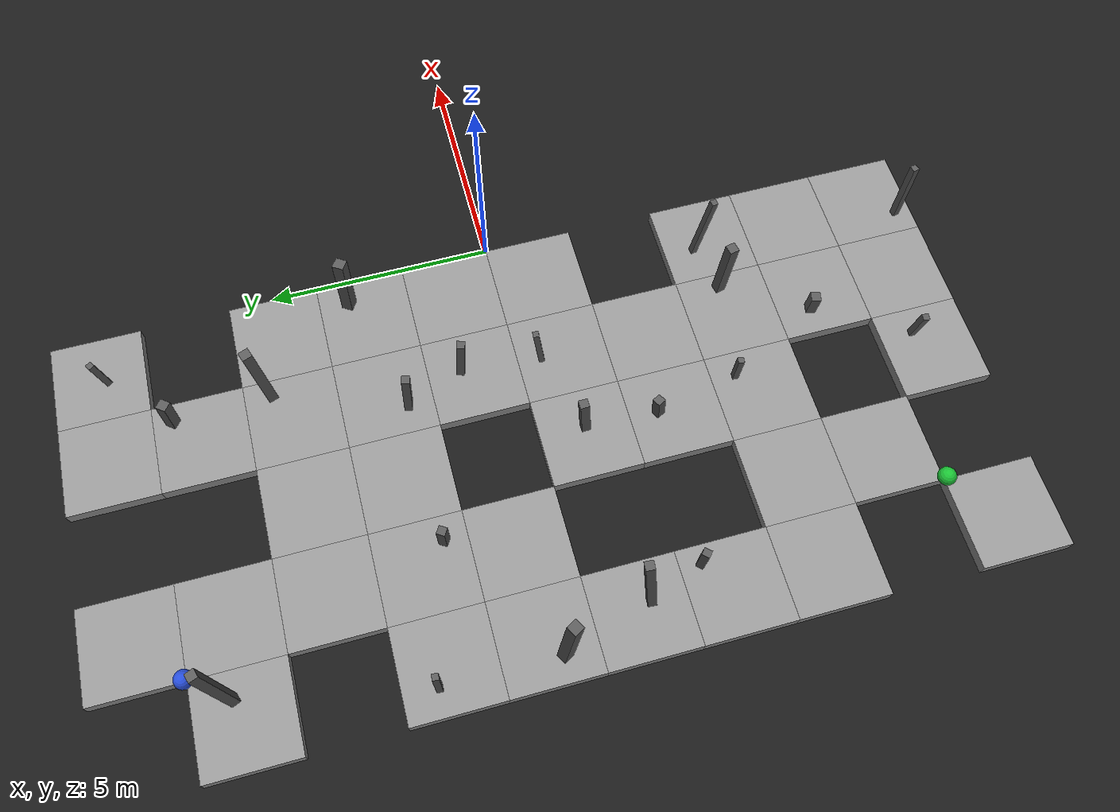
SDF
<sdf version="1.6">
 <world name="obstacle_course">
  <model name="pit_floor">
   <static>true</static>
   <link name="link">
    <pose>0 0 -2.0 0 0 0</pose>
    <collision name="col">
     <geometry><plane><normal>0 0 1</normal><size>100 100</size></plane></geometry>
     <surface><friction><ode><mu>0.5</mu><mu2>0.5</mu2></ode></friction></surface>
    </collision>
    <visual name="vis">
     <cast_shadows>false</cast_shadows>
     <geometry><plane><normal>0 0 1</normal><size>100 100</size></plane></geometry>
     <material>
      <ambient>0.06 0.06 0.06 1</ambient>
      <diffuse>0.10 0.10 0.10 1</diffuse>
      <specular>0 0 0 1</specular>
     </material>
    </visual>
   </link>
  </model>
  <model name="obstacle_terrain">
   <static>true</static>
   <link name="tile_0_0">
    <pose>-9.000 -9.000 -0.150 0 0 0</pose>
    <collision name="col">
     <geometry><box><size>2.00 2.00 0.30</size></box></geometry>
     <surface><friction><ode><mu>1.0</mu><mu2>1.0</mu2></ode></friction></surface>
    </collision>
    <visual name="vis">
     <geometry><box><size>2.00 2.00 0.30</size></box></geometry>
     <material>
      <ambient>0.58 0.58 0.58 1</ambient>
      <diffuse>0.58 0.58 0.58 1</diffuse>
      <specular>0 0 0 1</specular>
     </material>
    </visual>
   </link>
   <link name="tile_0_2">
    <pose>-9.000 -5.000 -0.150 0 0 0</pose>
    <collision name="col">
     <geometry><box><size>2.00 2.00 0.30</size></box></geometry>
     <surface><friction><ode><mu>1.0</mu><mu2>1.0</mu2></ode></friction></surface>
    </collision>
    <visual name="vis">
     <geometry><box><size>2.00 2.00 0.30</size></box></geometry>
     <material>
      <ambient>0.58 0.58 0.58 1</ambient>
      <diffuse>0.58 0.58 0.58 1</diffuse>
      <specular>0 0 0 1</specular>
     </material>
    </visual>
   </link>
   <link name="tile_0_3">
    <pose>-9.000 -3.000 -0.150 0 0 0</pose>
    <collision name="col">
     <geometry><box><size>2.00 2.00 0.30</size></box></geometry>
     <surface><friction><ode><mu>1.0</mu><mu2>1.0</mu2></ode></friction></surface>
    </collision>
    <visual name="vis">
     <geometry><box><size>2.00 2.00 0.30</size></box></geometry>
     <material>
      <ambient>0.58 0.58 0.58 1</ambient>
      <diffuse>0.58 0.58 0.58 1</diffuse>
      <specular>0 0 0 1</specular>
     </material>
    </visual>
   </link>
   <link name="tile_0_4">
    <pose>-9.000 -1.000 -0.150 0 0 0</pose>
    <collision name="col">
     <geometry><box><size>2.00 2.00 0.30</size></box></geometry>
     <surface><friction><ode><mu>1.0</mu><mu2>1.0</mu2></ode></friction></surface>
    </collision>
    <visual name="vis">
     <geometry><box><size>2.00 2.00 0.30</size></box></geometry>
     <material>
      <ambient>0.58 0.58 0.58 1</ambient>
      <diffuse>0.58 0.58 0.58 1</diffuse>
      <specular>0 0 0 1</specular>
     </material>
    </visual>
   </link>
   <link name="tile_0_5">
    <pose>-9.000 1.000 -0.150 0 0 0</pose>
    <collision name="col">
     <geometry><box><size>2.00 2.00 0.30</size></box></geometry>
     <surface><friction><ode><mu>1.0</mu><mu2>1.0</mu2></ode></friction></surface>
    </collision>
    <visual name="vis">
     <geometry><box><size>2.00 2.00 0.30</size></box></geometry>
     <material>
      <ambient>0.58 0.58 0.58 1</ambient>
      <diffuse>0.58 0.58 0.58 1</diffuse>
      <specular>0 0 0 1</specular>
     </material>
    </visual>
   </link>
   <link name="tile_0_6">
    <pose>-9.000 3.000 -0.150 0 0 0</pose>
    <collision name="col">
     <geometry><box><size>2.00 2.00 0.30</size></box></geometry>
     <surface><friction><ode><mu>1.0</mu><mu2>1.0</mu2></ode></friction></surface>
    </collision>
    <visual name="vis">
     <geometry><box><size>2.00 2.00 0.30</size></box></geometry>
     <material>
      <ambient>0.58 0.58 0.58 1</ambient>
      <diffuse>0.58 0.58 0.58 1</diffuse>
      <specular>0 0 0 1</specular>
     </material>
    </visual>
   </link>
   <link name="tile_0_8">
    <pose>-9.000 7.000 -0.150 0 0 0</pose>
    <collision name="col">
     <geometry><box><size>2.00 2.00 0.30</size></box></geometry>
     <surface><friction><ode><mu>1.0</mu><mu2>1.0</mu2></ode></friction></surface>
    </collision>
    <visual name="vis">
     <geometry><box><size>2.00 2.00 0.30</size></box></geometry>
     <material>
      <ambient>0.58 0.58 0.58 1</ambient>
      <diffuse>0.58 0.58 0.58 1</diffuse>
      <specular>0 0 0 1</specular>
     </material>
    </visual>
   </link>
   <link name="tile_1_1">
    <pose>-7.000 -7.000 -0.150 0 0 0</pose>
    <collision name="col">
     <geometry><box><size>2.00 2.00 0.30</size></box></geometry>
     <surface><friction><ode><mu>1.0</mu><mu2>1.0</mu2></ode></friction></surface>
    </collision>
    <visual name="vis">
     <geometry><box><size>2.00 2.00 0.30</size></box></geometry>
     <material>
      <ambient>0.58 0.58 0.58 1</ambient>
      <diffuse>0.58 0.58 0.58 1</diffuse>
      <specular>0 0 0 1</specular>
     </material>
    </visual>
   </link>
   <link name="tile_1_2">
    <pose>-7.000 -5.000 -0.150 0 0 0</pose>
    <collision name="col">
     <geometry><box><size>2.00 2.00 0.30</size></box></geometry>
     <surface><friction><ode><mu>1.0</mu><mu2>1.0</mu2></ode></friction></surface>
    </collision>
    <visual name="vis">
     <geometry><box><size>2.00 2.00 0.30</size></box></geometry>
     <material>
      <ambient>0.58 0.58 0.58 1</ambient>
      <diffuse>0.58 0.58 0.58 1</diffuse>
      <specular>0 0 0 1</specular>
     </material>
    </visual>
   </link>
   <link name="tile_1_5">
    <pose>-7.000 1.000 -0.150 0 0 0</pose>
    <collision name="col">
     <geometry><box><size>2.00 2.00 0.30</size></box></geometry>
     <surface><friction><ode><mu>1.0</mu><mu2>1.0</mu2></ode></friction></surface>
    </collision>
    <visual name="vis">
     <geometry><box><size>2.00 2.00 0.30</size></box></geometry>
     <material>
      <ambient>0.58 0.58 0.58 1</ambient>
      <diffuse>0.58 0.58 0.58 1</diffuse>
      <specular>0 0 0 1</specular>
     </material>
    </visual>
   </link>
   <link name="tile_1_6">
    <pose>-7.000 3.000 -0.150 0 0 0</pose>
    <collision name="col">
     <geometry><box><size>2.00 2.00 0.30</size></box></geometry>
     <surface><friction><ode><mu>1.0</mu><mu2>1.0</mu2></ode></friction></surface>
    </collision>
    <visual name="vis">
     <geometry><box><size>2.00 2.00 0.30</size></box></geometry>
     <material>
      <ambient>0.58 0.58 0.58 1</ambient>
      <diffuse>0.58 0.58 0.58 1</diffuse>
      <specular>0 0 0 1</specular>
     </material>
    </visual>
   </link>
   <link name="tile_1_7">
    <pose>-7.000 5.000 -0.150 0 0 0</pose>
    <collision name="col">
     <geometry><box><size>2.00 2.00 0.30</size></box></geometry>
     <surface><friction><ode><mu>1.0</mu><mu2>1.0</mu2></ode></friction></surface>
    </collision>
    <visual name="vis">
     <geometry><box><size>2.00 2.00 0.30</size></box></geometry>
     <material>
      <ambient>0.58 0.58 0.58 1</ambient>
      <diffuse>0.58 0.58 0.58 1</diffuse>
      <specular>0 0 0 1</specular>
     </material>
    </visual>
   </link>
   <link name="tile_1_8">
    <pose>-7.000 7.000 -0.150 0 0 0</pose>
    <collision name="col">
     <geometry><box><size>2.00 2.00 0.30</size></box></geometry>
     <surface><friction><ode><mu>1.0</mu><mu2>1.0</mu2></ode></friction></surface>
    </collision>
    <visual name="vis">
     <geometry><box><size>2.00 2.00 0.30</size></box></geometry>
     <material>
      <ambient>0.58 0.58 0.58 1</ambient>
      <diffuse>0.58 0.58 0.58 1</diffuse>
      <specular>0 0 0 1</specular>
     </material>
    </visual>
   </link>
   <link name="tile_1_9">
    <pose>-7.000 9.000 -0.150 0 0 0</pose>
    <collision name="col">
     <geometry><box><size>2.00 2.00 0.30</size></box></geometry>
     <surface><friction><ode><mu>1.0</mu><mu2>1.0</mu2></ode></friction></surface>
    </collision>
    <visual name="vis">
     <geometry><box><size>2.00 2.00 0.30</size></box></geometry>
     <material>
      <ambient>0.58 0.58 0.58 1</ambient>
      <diffuse>0.58 0.58 0.58 1</diffuse>
      <specular>0 0 0 1</specular>
     </material>
    </visual>
   </link>
   <link name="tile_2_0">
    <pose>-5.000 -9.000 -0.150 0 0 0</pose>
    <collision name="col">
     <geometry><box><size>2.00 2.00 0.30</size></box></geometry>
     <surface><friction><ode><mu>1.0</mu><mu2>1.0</mu2></ode></friction></surface>
    </collision>
    <visual name="vis">
     <geometry><box><size>2.00 2.00 0.30</size></box></geometry>
     <material>
      <ambient>0.58 0.58 0.58 1</ambient>
      <diffuse>0.58 0.58 0.58 1</diffuse>
      <specular>0 0 0 1</specular>
     </material>
    </visual>
   </link>
   <link name="tile_2_2">
    <pose>-5.000 -5.000 -0.150 0 0 0</pose>
    <collision name="col">
     <geometry><box><size>2.00 2.00 0.30</size></box></geometry>
     <surface><friction><ode><mu>1.0</mu><mu2>1.0</mu2></ode></friction></surface>
    </collision>
    <visual name="vis">
     <geometry><box><size>2.00 2.00 0.30</size></box></geometry>
     <material>
      <ambient>0.58 0.58 0.58 1</ambient>
      <diffuse>0.58 0.58 0.58 1</diffuse>
      <specular>0 0 0 1</specular>
     </material>
    </visual>
   </link>
   <link name="tile_2_3">
    <pose>-5.000 -3.000 -0.150 0 0 0</pose>
    <collision name="col">
     <geometry><box><size>2.00 2.00 0.30</size></box></geometry>
     <surface><friction><ode><mu>1.0</mu><mu2>1.0</mu2></ode></friction></surface>
    </collision>
    <visual name="vis">
     <geometry><box><size>2.00 2.00 0.30</size></box></geometry>
     <material>
      <ambient>0.58 0.58 0.58 1</ambient>
      <diffuse>0.58 0.58 0.58 1</diffuse>
      <specular>0 0 0 1</specular>
     </material>
    </visual>
   </link>
   <link name="tile_2_4">
    <pose>-5.000 -1.000 -0.150 0 0 0</pose>
    <collision name="col">
     <geometry><box><size>2.00 2.00 0.30</size></box></geometry>
     <surface><friction><ode><mu>1.0</mu><mu2>1.0</mu2></ode></friction></surface>
    </collision>
    <visual name="vis">
     <geometry><box><size>2.00 2.00 0.30</size></box></geometry>
     <material>
      <ambient>0.58 0.58 0.58 1</ambient>
      <diffuse>0.58 0.58 0.58 1</diffuse>
      <specular>0 0 0 1</specular>
     </material>
    </visual>
   </link>
   <link name="tile_2_6">
    <pose>-5.000 3.000 -0.150 0 0 0</pose>
    <collision name="col">
     <geometry><box><size>2.00 2.00 0.30</size></box></geometry>
     <surface><friction><ode><mu>1.0</mu><mu2>1.0</mu2></ode></friction></surface>
    </collision>
    <visual name="vis">
     <geometry><box><size>2.00 2.00 0.30</size></box></geometry>
     <material>
      <ambient>0.58 0.58 0.58 1</ambient>
      <diffuse>0.58 0.58 0.58 1</diffuse>
      <specular>0 0 0 1</specular>
     </material>
    </visual>
   </link>
   <link name="tile_2_7">
    <pose>-5.000 5.000 -0.150 0 0 0</pose>
    <collision name="col">
     <geometry><box><size>2.00 2.00 0.30</size></box></geometry>
     <surface><friction><ode><mu>1.0</mu><mu2>1.0</mu2></ode></friction></surface>
    </collision>
    <visual name="vis">
     <geometry><box><size>2.00 2.00 0.30</size></box></geometry>
     <material>
      <ambient>0.58 0.58 0.58 1</ambient>
      <diffuse>0.58 0.58 0.58 1</diffuse>
      <specular>0 0 0 1</specular>
     </material>
    </visual>
   </link>
   <link name="tile_3_0">
    <pose>-3.000 -9.000 -0.150 0 0 0</pose>
    <collision name="col">
     <geometry><box><size>2.00 2.00 0.30</size></box></geometry>
     <surface><friction><ode><mu>1.0</mu><mu2>1.0</mu2></ode></friction></surface>
    </collision>
    <visual name="vis">
     <geometry><box><size>2.00 2.00 0.30</size></box></geometry>
     <material>
      <ambient>0.58 0.58 0.58 1</ambient>
      <diffuse>0.58 0.58 0.58 1</diffuse>
      <specular>0 0 0 1</specular>
     </material>
    </visual>
   </link>
   <link name="tile_3_1">
    <pose>-3.000 -7.000 -0.150 0 0 0</pose>
    <collision name="col">
     <geometry><box><size>2.00 2.00 0.30</size></box></geometry>
     <surface><friction><ode><mu>1.0</mu><mu2>1.0</mu2></ode></friction></surface>
    </collision>
    <visual name="vis">
     <geometry><box><size>2.00 2.00 0.30</size></box></geometry>
     <material>
      <ambient>0.58 0.58 0.58 1</ambient>
      <diffuse>0.58 0.58 0.58 1</diffuse>
      <specular>0 0 0 1</specular>
     </material>
    </visual>
   </link>
   <link name="tile_3_2">
    <pose>-3.000 -5.000 -0.150 0 0 0</pose>
    <collision name="col">
     <geometry><box><size>2.00 2.00 0.30</size></box></geometry>
     <surface><friction><ode><mu>1.0</mu><mu2>1.0</mu2></ode></friction></surface>
    </collision>
    <visual name="vis">
     <geometry><box><size>2.00 2.00 0.30</size></box></geometry>
     <material>
      <ambient>0.58 0.58 0.58 1</ambient>
      <diffuse>0.58 0.58 0.58 1</diffuse>
      <specular>0 0 0 1</specular>
     </material>
    </visual>
   </link>
   <link name="tile_3_3">
    <pose>-3.000 -3.000 -0.150 0 0 0</pose>
    <collision name="col">
     <geometry><box><size>2.00 2.00 0.30</size></box></geometry>
     <surface><friction><ode><mu>1.0</mu><mu2>1.0</mu2></ode></friction></surface>
    </collision>
    <visual name="vis">
     <geometry><box><size>2.00 2.00 0.30</size></box></geometry>
     <material>
      <ambient>0.58 0.58 0.58 1</ambient>
      <diffuse>0.58 0.58 0.58 1</diffuse>
      <specular>0 0 0 1</specular>
     </material>
    </visual>
   </link>
   <link name="tile_3_4">
    <pose>-3.000 -1.000 -0.150 0 0 0</pose>
    <collision name="col">
     <geometry><box><size>2.00 2.00 0.30</size></box></geometry>
     <surface><friction><ode><mu>1.0</mu><mu2>1.0</mu2></ode></friction></surface>
    </collision>
    <visual name="vis">
     <geometry><box><size>2.00 2.00 0.30</size></box></geometry>
     <material>
      <ambient>0.58 0.58 0.58 1</ambient>
      <diffuse>0.58 0.58 0.58 1</diffuse>
      <specular>0 0 0 1</specular>
     </material>
    </visual>
   </link>
   <link name="tile_3_5">
    <pose>-3.000 1.000 -0.150 0 0 0</pose>
    <collision name="col">
     <geometry><box><size>2.00 2.00 0.30</size></box></geometry>
     <surface><friction><ode><mu>1.0</mu><mu2>1.0</mu2></ode></friction></surface>
    </collision>
    <visual name="vis">
     <geometry><box><size>2.00 2.00 0.30</size></box></geometry>
     <material>
      <ambient>0.58 0.58 0.58 1</ambient>
      <diffuse>0.58 0.58 0.58 1</diffuse>
      <specular>0 0 0 1</specular>
     </material>
    </visual>
   </link>
   <link name="tile_3_6">
    <pose>-3.000 3.000 -0.150 0 0 0</pose>
    <collision name="col">
     <geometry><box><size>2.00 2.00 0.30</size></box></geometry>
     <surface><friction><ode><mu>1.0</mu><mu2>1.0</mu2></ode></friction></surface>
    </collision>
    <visual name="vis">
     <geometry><box><size>2.00 2.00 0.30</size></box></geometry>
     <material>
      <ambient>0.58 0.58 0.58 1</ambient>
      <diffuse>0.58 0.58 0.58 1</diffuse>
      <specular>0 0 0 1</specular>
     </material>
    </visual>
   </link>
   <link name="tile_3_7">
    <pose>-3.000 5.000 -0.150 0 0 0</pose>
    <collision name="col">
     <geometry><box><size>2.00 2.00 0.30</size></box></geometry>
     <surface><friction><ode><mu>1.0</mu><mu2>1.0</mu2></ode></friction></surface>
    </collision>
    <visual name="vis">
     <geometry><box><size>2.00 2.00 0.30</size></box></geometry>
     <material>
      <ambient>0.58 0.58 0.58 1</ambient>
      <diffuse>0.58 0.58 0.58 1</diffuse>
      <specular>0 0 0 1</specular>
     </material>
    </visual>
   </link>
   <link name="tile_3_8">
    <pose>-3.000 7.000 -0.150 0 0 0</pose>
    <collision name="col">
     <geometry><box><size>2.00 2.00 0.30</size></box></geometry>
     <surface><friction><ode><mu>1.0</mu><mu2>1.0</mu2></ode></friction></surface>
    </collision>
    <visual name="vis">
     <geometry><box><size>2.00 2.00 0.30</size></box></geometry>
     <material>
      <ambient>0.58 0.58 0.58 1</ambient>
      <diffuse>0.58 0.58 0.58 1</diffuse>
      <specular>0 0 0 1</specular>
     </material>
    </visual>
   </link>
   <link name="tile_3_9">
    <pose>-3.000 9.000 -0.150 0 0 0</pose>
    <collision name="col">
     <geometry><box><size>2.00 2.00 0.30</size></box></geometry>
     <surface><friction><ode><mu>1.0</mu><mu2>1.0</mu2></ode></friction></surface>
    </collision>
    <visual name="vis">
     <geometry><box><size>2.00 2.00 0.30</size></box></geometry>
     <material>
      <ambient>0.58 0.58 0.58 1</ambient>
      <diffuse>0.58 0.58 0.58 1</diffuse>
      <specular>0 0 0 1</specular>
     </material>
    </visual>
   </link>
   <link name="tile_4_0">
    <pose>-1.000 -9.000 -0.150 0 0 0</pose>
    <collision name="col">
     <geometry><box><size>2.00 2.00 0.30</size></box></geometry>
     <surface><friction><ode><mu>1.0</mu><mu2>1.0</mu2></ode></friction></surface>
    </collision>
    <visual name="vis">
     <geometry><box><size>2.00 2.00 0.30</size></box></geometry>
     <material>
      <ambient>0.58 0.58 0.58 1</ambient>
      <diffuse>0.58 0.58 0.58 1</diffuse>
      <specular>0 0 0 1</specular>
     </material>
    </visual>
   </link>
   <link name="tile_4_1">
    <pose>-1.000 -7.000 -0.150 0 0 0</pose>
    <collision name="col">
     <geometry><box><size>2.00 2.00 0.30</size></box></geometry>
     <surface><friction><ode><mu>1.0</mu><mu2>1.0</mu2></ode></friction></surface>
    </collision>
    <visual name="vis">
     <geometry><box><size>2.00 2.00 0.30</size></box></geometry>
     <material>
      <ambient>0.58 0.58 0.58 1</ambient>
      <diffuse>0.58 0.58 0.58 1</diffuse>
      <specular>0 0 0 1</specular>
     </material>
    </visual>
   </link>
   <link name="tile_4_2">
    <pose>-1.000 -5.000 -0.150 0 0 0</pose>
    <collision name="col">
     <geometry><box><size>2.00 2.00 0.30</size></box></geometry>
     <surface><friction><ode><mu>1.0</mu><mu2>1.0</mu2></ode></friction></surface>
    </collision>
    <visual name="vis">
     <geometry><box><size>2.00 2.00 0.30</size></box></geometry>
     <material>
      <ambient>0.58 0.58 0.58 1</ambient>
      <diffuse>0.58 0.58 0.58 1</diffuse>
      <specular>0 0 0 1</specular>
     </material>
    </visual>
   </link>
   <link name="tile_4_4">
    <pose>-1.000 -1.000 -0.150 0 0 0</pose>
    <collision name="col">
     <geometry><box><size>2.00 2.00 0.30</size></box></geometry>
     <surface><friction><ode><mu>1.0</mu><mu2>1.0</mu2></ode></friction></surface>
    </collision>
    <visual name="vis">
     <geometry><box><size>2.00 2.00 0.30</size></box></geometry>
     <material>
      <ambient>0.58 0.58 0.58 1</ambient>
      <diffuse>0.58 0.58 0.58 1</diffuse>
      <specular>0 0 0 1</specular>
     </material>
    </visual>
   </link>
   <link name="tile_4_5">
    <pose>-1.000 1.000 -0.150 0 0 0</pose>
    <collision name="col">
     <geometry><box><size>2.00 2.00 0.30</size></box></geometry>
     <surface><friction><ode><mu>1.0</mu><mu2>1.0</mu2></ode></friction></surface>
    </collision>
    <visual name="vis">
     <geometry><box><size>2.00 2.00 0.30</size></box></geometry>
     <material>
      <ambient>0.58 0.58 0.58 1</ambient>
      <diffuse>0.58 0.58 0.58 1</diffuse>
      <specular>0 0 0 1</specular>
     </material>
    </visual>
   </link>
   <link name="tile_4_6">
    <pose>-1.000 3.000 -0.150 0 0 0</pose>
    <collision name="col">
     <geometry><box><size>2.00 2.00 0.30</size></box></geometry>
     <surface><friction><ode><mu>1.0</mu><mu2>1.0</mu2></ode></friction></surface>
    </collision>
    <visual name="vis">
     <geometry><box><size>2.00 2.00 0.30</size></box></geometry>
     <material>
      <ambient>0.58 0.58 0.58 1</ambient>
      <diffuse>0.58 0.58 0.58 1</diffuse>
      <specular>0 0 0 1</specular>
     </material>
    </visual>
   </link>
   <link name="tile_4_7">
    <pose>-1.000 5.000 -0.150 0 0 0</pose>
    <collision name="col">
     <geometry><box><size>2.00 2.00 0.30</size></box></geometry>
     <surface><friction><ode><mu>1.0</mu><mu2>1.0</mu2></ode></friction></surface>
    </collision>
    <visual name="vis">
     <geometry><box><size>2.00 2.00 0.30</size></box></geometry>
     <material>
      <ambient>0.58 0.58 0.58 1</ambient>
      <diffuse>0.58 0.58 0.58 1</diffuse>
      <specular>0 0 0 1</specular>
     </material>
    </visual>
   </link>
   <link name="tile_4_9">
    <pose>-1.000 9.000 -0.150 0 0 0</pose>
    <collision name="col">
     <geometry><box><size>2.00 2.00 0.30</size></box></geometry>
     <surface><friction><ode><mu>1.0</mu><mu2>1.0</mu2></ode></friction></surface>
    </collision>
    <visual name="vis">
     <geometry><box><size>2.00 2.00 0.30</size></box></geometry>
     <material>
      <ambient>0.58 0.58 0.58 1</ambient>
      <diffuse>0.58 0.58 0.58 1</diffuse>
      <specular>0 0 0 1</specular>
     </material>
    </visual>
   </link>
   <link name="spike_1">
    <pose>-1.425 -9.652 0.786 0.0811 0.0719 0.2226</pose>
    <collision name="col"><geometry><box><size>0.150 0.150 1.573</size></box></geometry></collision>
    <visual name="vis">
     <geometry><box><size>0.150 0.150 1.573</size></box></geometry>
     <material>
      <ambient>0.35 0.35 0.35 1</ambient>
      <diffuse>0.35 0.35 0.35 1</diffuse>
      <specular>0 0 0 1</specular>
     </material>
    </visual>
   </link>
   <link name="spike_2">
    <pose>-9.398 3.257 0.432 0.0871 0.0142 1.4849</pose>
    <collision name="col"><geometry><box><size>0.137 0.137 0.864</size></box></geometry></collision>
    <visual name="vis">
     <geometry><box><size>0.137 0.137 0.864</size></box></geometry>
     <material>
      <ambient>0.35 0.35 0.35 1</ambient>
      <diffuse>0.35 0.35 0.35 1</diffuse>
      <specular>0 0 0 1</specular>
     </material>
    </visual>
   </link>
   <link name="spike_3">
    <pose>-4.567 -4.533 0.412 -0.0138 -0.0153 1.4672</pose>
    <collision name="col"><geometry><box><size>0.133 0.133 0.824</size></box></geometry></collision>
    <visual name="vis">
     <geometry><box><size>0.133 0.133 0.824</size></box></geometry>
     <material>
      <ambient>0.35 0.35 0.35 1</ambient>
      <diffuse>0.35 0.35 0.35 1</diffuse>
      <specular>0 0 0 1</specular>
     </material>
    </visual>
   </link>
   <link name="spike_5">
    <pose>-3.382 2.529 0.631 -0.0443 -0.0500 2.9005</pose>
    <collision name="col"><geometry><box><size>0.175 0.175 1.263</size></box></geometry></collision>
    <visual name="vis">
     <geometry><box><size>0.175 0.175 1.263</size></box></geometry>
     <material>
      <ambient>0.35 0.35 0.35 1</ambient>
      <diffuse>0.35 0.35 0.35 1</diffuse>
      <specular>0 0 0 1</specular>
     </material>
    </visual>
   </link>
   <link name="spike_6">
    <pose>-3.086 -0.451 0.718 0.0999 0.0672 3.0442</pose>
    <collision name="col"><geometry><box><size>0.127 0.127 1.436</size></box></geometry></collision>
    <visual name="vis">
     <geometry><box><size>0.127 0.127 1.436</size></box></geometry>
     <material>
      <ambient>0.35 0.35 0.35 1</ambient>
      <diffuse>0.35 0.35 0.35 1</diffuse>
      <specular>0 0 0 1</specular>
     </material>
    </visual>
   </link>
   <link name="spike_10">
    <pose>-4.936 -2.623 0.299 0.0006 0.0705 0.4946</pose>
    <collision name="col"><geometry><box><size>0.196 0.196 0.597</size></box></geometry></collision>
    <visual name="vis">
     <geometry><box><size>0.196 0.196 0.597</size></box></geometry>
     <material>
      <ambient>0.35 0.35 0.35 1</ambient>
      <diffuse>0.35 0.35 0.35 1</diffuse>
      <specular>0 0 0 1</specular>
     </material>
    </visual>
   </link>
   <link name="spike_15">
    <pose>-9.436 0.643 1.043 0.0759 -0.0261 0.4956</pose>
    <collision name="col"><geometry><box><size>0.235 0.235 2.087</size></box></geometry></collision>
    <visual name="vis">
     <geometry><box><size>0.235 0.235 2.087</size></box></geometry>
     <material>
      <ambient>0.35 0.35 0.35 1</ambient>
      <diffuse>0.35 0.35 0.35 1</diffuse>
      <specular>0 0 0 1</specular>
     </material>
    </visual>
   </link>
   <link name="spike_16">
    <pose>-0.493 3.309 0.770 0.0308 -0.0984 2.5670</pose>
    <collision name="col"><geometry><box><size>0.248 0.248 1.540</size></box></geometry></collision>
    <visual name="vis">
     <geometry><box><size>0.248 0.248 1.540</size></box></geometry>
     <material>
      <ambient>0.35 0.35 0.35 1</ambient>
      <diffuse>0.35 0.35 0.35 1</diffuse>
      <specular>0 0 0 1</specular>
     </material>
    </visual>
   </link>
   <link name="spike_17">
    <pose>-1.305 -4.752 1.048 -0.0769 -0.0786 1.7380</pose>
    <collision name="col"><geometry><box><size>0.137 0.137 2.096</size></box></geometry></collision>
    <visual name="vis">
     <geometry><box><size>0.137 0.137 2.096</size></box></geometry>
     <material>
      <ambient>0.35 0.35 0.35 1</ambient>
      <diffuse>0.35 0.35 0.35 1</diffuse>
      <specular>0 0 0 1</specular>
     </material>
    </visual>
   </link>
   <link name="spike_19">
    <pose>-8.384 -2.474 0.328 -0.0447 -0.0993 2.4225</pose>
    <collision name="col"><geometry><box><size>0.175 0.175 0.657</size></box></geometry></collision>
    <visual name="vis">
     <geometry><box><size>0.175 0.175 0.657</size></box></geometry>
     <material>
      <ambient>0.35 0.35 0.35 1</ambient>
      <diffuse>0.35 0.35 0.35 1</diffuse>
      <specular>0 0 0 1</specular>
     </material>
    </visual>
   </link>
   <link name="spike_25">
    <pose>-2.345 5.459 0.984 -0.0466 0.0575 0.3396</pose>
    <collision name="col"><geometry><box><size>0.225 0.225 1.969</size></box></geometry></collision>
    <visual name="vis">
     <geometry><box><size>0.225 0.225 1.969</size></box></geometry>
     <material>
      <ambient>0.35 0.35 0.35 1</ambient>
      <diffuse>0.35 0.35 0.35 1</diffuse>
      <specular>0 0 0 1</specular>
     </material>
    </visual>
   </link>
   <link name="spike_26">
    <pose>-2.434 7.545 0.439 -0.0079 -0.0390 2.4987</pose>
    <collision name="col"><geometry><box><size>0.226 0.226 0.878</size></box></geometry></collision>
    <visual name="vis">
     <geometry><box><size>0.226 0.226 0.878</size></box></geometry>
     <material>
      <ambient>0.35 0.35 0.35 1</ambient>
      <diffuse>0.35 0.35 0.35 1</diffuse>
      <specular>0 0 0 1</specular>
     </material>
    </visual>
   </link>
   <link name="spike_28">
    <pose>-8.785 -1.152 1.084 0.0878 -0.0769 3.0486</pose>
    <collision name="col"><geometry><box><size>0.190 0.190 2.168</size></box></geometry></collision>
    <visual name="vis">
     <geometry><box><size>0.190 0.190 2.168</size></box></geometry>
     <material>
      <ambient>0.35 0.35 0.35 1</ambient>
      <diffuse>0.35 0.35 0.35 1</diffuse>
      <specular>0 0 0 1</specular>
     </material>
    </visual>
   </link>
   <link name="spike_30">
    <pose>-4.839 -0.983 0.577 -0.0491 0.0418 0.0053</pose>
    <collision name="col"><geometry><box><size>0.195 0.195 1.155</size></box></geometry></collision>
    <visual name="vis">
     <geometry><box><size>0.195 0.195 1.155</size></box></geometry>
     <material>
      <ambient>0.35 0.35 0.35 1</ambient>
      <diffuse>0.35 0.35 0.35 1</diffuse>
      <specular>0 0 0 1</specular>
     </material>
    </visual>
   </link>
   <link name="spike_31">
    <pose>-2.353 -4.942 0.862 0.0341 -0.0272 0.2198</pose>
    <collision name="col"><geometry><box><size>0.216 0.216 1.723</size></box></geometry></collision>
    <visual name="vis">
     <geometry><box><size>0.216 0.216 1.723</size></box></geometry>
     <material>
      <ambient>0.35 0.35 0.35 1</ambient>
      <diffuse>0.35 0.35 0.35 1</diffuse>
      <specular>0 0 0 1</specular>
     </material>
    </visual>
   </link>
   <link name="spike_33">
    <pose>-1.139 8.852 0.501 -0.0159 0.0881 2.1279</pose>
    <collision name="col"><geometry><box><size>0.137 0.137 1.003</size></box></geometry></collision>
    <visual name="vis">
     <geometry><box><size>0.137 0.137 1.003</size></box></geometry>
     <material>
      <ambient>0.35 0.35 0.35 1</ambient>
      <diffuse>0.35 0.35 0.35 1</diffuse>
      <specular>0 0 0 1</specular>
     </material>
    </visual>
   </link>
   <link name="spike_35">
    <pose>-2.878 1.235 0.645 -0.0573 -0.0054 2.8311</pose>
    <collision name="col"><geometry><box><size>0.177 0.177 1.290</size></box></geometry></collision>
    <visual name="vis">
     <geometry><box><size>0.177 0.177 1.290</size></box></geometry>
     <material>
      <ambient>0.35 0.35 0.35 1</ambient>
      <diffuse>0.35 0.35 0.35 1</diffuse>
      <specular>0 0 0 1</specular>
     </material>
    </visual>
   </link>
   <link name="spike_36">
    <pose>-6.550 2.498 0.322 0.0266 -0.0330 2.5712</pose>
    <collision name="col"><geometry><box><size>0.187 0.187 0.644</size></box></geometry></collision>
    <visual name="vis">
     <geometry><box><size>0.187 0.187 0.644</size></box></geometry>
     <material>
      <ambient>0.35 0.35 0.35 1</ambient>
      <diffuse>0.35 0.35 0.35 1</diffuse>
      <specular>0 0 0 1</specular>
     </material>
    </visual>
   </link>
   <link name="spike_37">
    <pose>-4.618 -8.737 0.441 -0.0951 -0.0510 1.4927</pose>
    <collision name="col"><geometry><box><size>0.146 0.146 0.882</size></box></geometry></collision>
    <visual name="vis">
     <geometry><box><size>0.146 0.146 0.882</size></box></geometry>
     <material>
      <ambient>0.35 0.35 0.35 1</ambient>
      <diffuse>0.35 0.35 0.35 1</diffuse>
      <specular>0 0 0 1</specular>
     </material>
    </visual>
   </link>
   <link name="spike_39">
    <pose>-3.389 -6.763 0.255 0.0540 -0.0787 1.3356</pose>
    <collision name="col"><geometry><box><size>0.218 0.218 0.509</size></box></geometry></collision>
    <visual name="vis">
     <geometry><box><size>0.218 0.218 0.509</size></box></geometry>
     <material>
      <ambient>0.35 0.35 0.35 1</ambient>
      <diffuse>0.35 0.35 0.35 1</diffuse>
      <specular>0 0 0 1</specular>
     </material>
    </visual>
   </link>
   <link name="spike_41">
    <pose>-8.542 7.255 1.090 0.0900 0.0783 1.9247</pose>
    <collision name="col"><geometry><box><size>0.197 0.197 2.179</size></box></geometry></collision>
    <visual name="vis">
     <geometry><box><size>0.197 0.197 2.179</size></box></geometry>
     <material>
      <ambient>0.35 0.35 0.35 1</ambient>
      <diffuse>0.35 0.35 0.35 1</diffuse>
      <specular>0 0 0 1</specular>
     </material>
    </visual>
   </link>
  </model>
  <model name="blue_ball">
   <static>false</static>
   <pose>-8.000 8.000 0.200 0 0 0</pose>
   <link name="link">
    <inertial>
     <mass>0.5</mass>
     <inertia><ixx>0.0080</ixx><ixy>0</ixy><ixz>0</ixz><iyy>0.0080</iyy><iyz>0</iyz><izz>0.0080</izz></inertia>
    </inertial>
    <collision name="collision">
     <geometry><sphere><radius>0.2</radius></sphere></geometry>
     <surface>
      <friction><ode><mu>0.6</mu><mu2>0.6</mu2></ode></friction>
      <bounce><restitution_coefficient>0.5</restitution_coefficient><threshold>0</threshold></bounce>
     </surface>
    </collision>
    <visual name="visual">
     <geometry><sphere><radius>0.2</radius></sphere></geometry>
     <material>
      <ambient>0.15 0.3 0.85 1</ambient>
      <diffuse>0.15 0.3 0.85 1</diffuse>
      <specular>0.5 0.4 0.3 50</specular>
     </material>
    </visual>
   </link>
  </model>
  <model name="green_ball">
   <static>false</static>
   <pose>-8.000 -8.000 0.200 0 0 0</pose>
   <link name="link">
    <inertial>
     <mass>0.5</mass>
     <inertia><ixx>0.0080</ixx><ixy>0</ixy><ixz>0</ixz><iyy>0.0080</iyy><iyz>0</iyz><izz>0.0080</izz></inertia>
    </inertial>
    <collision name="collision">
     <geometry><sphere><radius>0.2</radius></sphere></geometry>
     <surface>
      <friction><ode><mu>0.6</mu><mu2>0.6</mu2></ode></friction>
      <bounce><restitution_coefficient>0.5</restitution_coefficient><threshold>0</threshold></bounce>
     </surface>
    </collision>
    <visual name="visual">
     <geometry><sphere><radius>0.2</radius></sphere></geometry>
     <material>
      <ambient>0.1 0.75 0.2 1</ambient>
      <diffuse>0.1 0.75 0.2 1</diffuse>
      <specular>0.5 0.4 0.3 50</specular>
     </material>
    </visual>
   </link>
  </model>
 </world>
</sdf>
